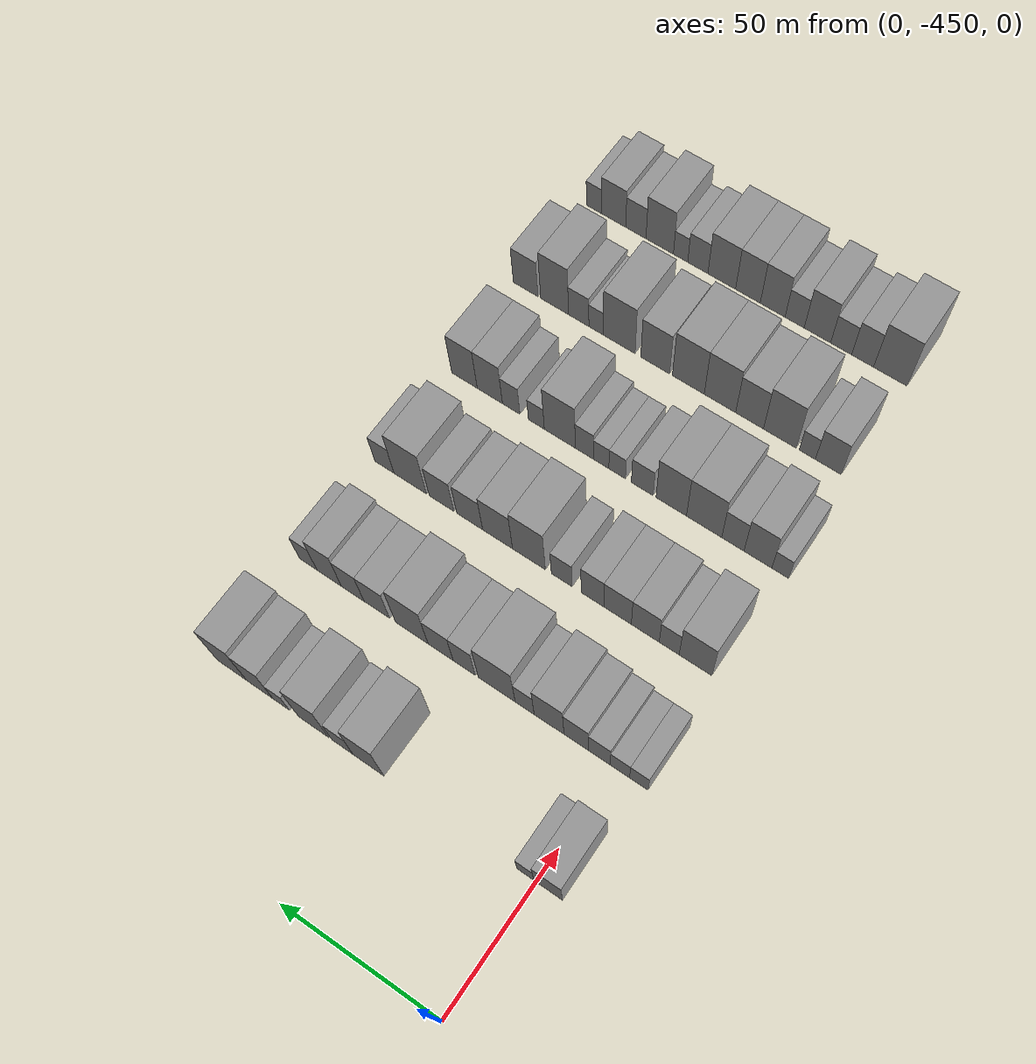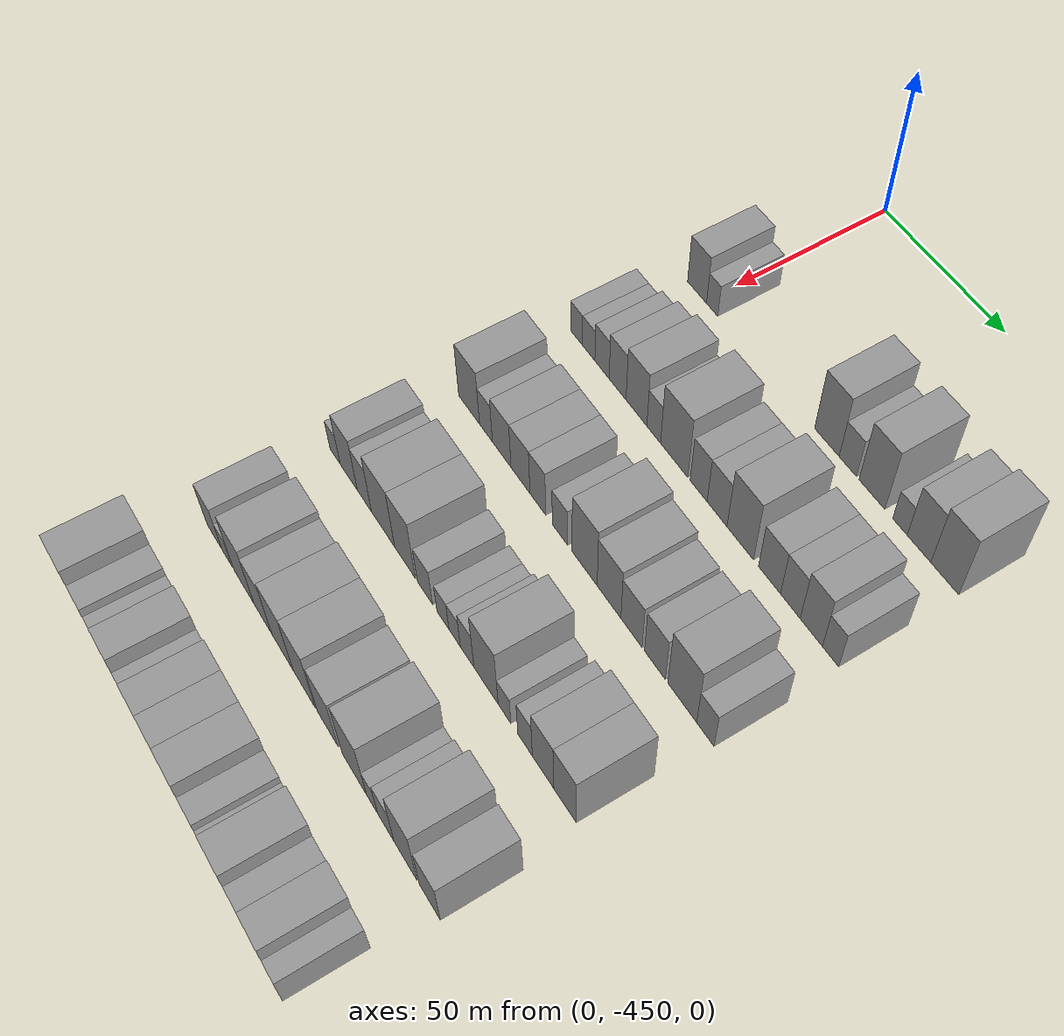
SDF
<sdf version="1.6">
 <world name="default">
  <model name="building_14">
   <static>1</static>
   <pose>50.0000 -453.6241 0 0.000000 0.000000 0.000000</pose>
   <link name="link">
    <pose>0 0 9.00 0 0 0</pose>
    <collision name="collision"><geometry><box><size>20.0000 8.7379 18.0000</size></box></geometry></collision>
    <visual name="visual">
     <cast_shadows>0</cast_shadows>
     <geometry><box><size>20.0000 8.7379 18.0000</size></box></geometry>
     <material>
      <script>
       <uri>model://grey_wall/materials/scripts</uri>
       <uri>model://grey_wall/materials/textures</uri>
       <name>vrc/grey_wall</name>
      </script>
     </material>
    </visual>
   </link>
  </model>
  <model name="building_15">
   <static>1</static>
   <pose>50.0000 -446.6677 0 0.000000 0.000000 0.000000</pose>
   <link name="link">
    <pose>0 0 6.00 0 0 0</pose>
    <collision name="collision"><geometry><box><size>20.0000 5.1750 12.0000</size></box></geometry></collision>
    <visual name="visual">
     <cast_shadows>0</cast_shadows>
     <geometry><box><size>20.0000 5.1750 12.0000</size></box></geometry>
     <material>
      <script>
       <uri>model://grey_wall/materials/scripts</uri>
       <uri>model://grey_wall/materials/textures</uri>
       <name>vrc/grey_wall</name>
      </script>
     </material>
    </visual>
   </link>
  </model>
  <model name="building_16">
   <static>1</static>
   <pose>50.0000 -397.0760 0 0.000000 0.000000 0.000000</pose>
   <link name="link">
    <pose>0 0 12.00 0 0 0</pose>
    <collision name="collision"><geometry><box><size>20.0000 10.0028 24.0000</size></box></geometry></collision>
    <visual name="visual">
     <cast_shadows>0</cast_shadows>
     <geometry><box><size>20.0000 10.0028 24.0000</size></box></geometry>
     <material>
      <script>
       <uri>model://grey_wall/materials/scripts</uri>
       <uri>model://grey_wall/materials/textures</uri>
       <name>vrc/grey_wall</name>
      </script>
     </material>
    </visual>
   </link>
  </model>
  <model name="building_17">
   <static>1</static>
   <pose>50.0000 -388.5987 0 0.000000 0.000000 0.000000</pose>
   <link name="link">
    <pose>0 0 7.50 0 0 0</pose>
    <collision name="collision"><geometry><box><size>20.0000 6.9518 15.0000</size></box></geometry></collision>
    <visual name="visual">
     <cast_shadows>0</cast_shadows>
     <geometry><box><size>20.0000 6.9518 15.0000</size></box></geometry>
     <material>
      <script>
       <uri>model://grey_wall/materials/scripts</uri>
       <uri>model://grey_wall/materials/textures</uri>
       <name>vrc/grey_wall</name>
      </script>
     </material>
    </visual>
   </link>
  </model>
  <model name="building_18">
   <static>1</static>
   <pose>50.0000 -379.0550 0 0.000000 0.000000 0.000000</pose>
   <link name="link">
    <pose>0 0 12.00 0 0 0</pose>
    <collision name="collision"><geometry><box><size>20.0000 10.1357 24.0000</size></box></geometry></collision>
    <visual name="visual">
     <cast_shadows>0</cast_shadows>
     <geometry><box><size>20.0000 10.1357 24.0000</size></box></geometry>
     <material>
      <script>
       <uri>model://grey_wall/materials/scripts</uri>
       <uri>model://grey_wall/materials/textures</uri>
       <name>vrc/grey_wall</name>
      </script>
     </material>
    </visual>
   </link>
  </model>
  <model name="building_19">
   <static>1</static>
   <pose>50.0000 -368.2282 0 0.000000 0.000000 0.000000</pose>
   <link name="link">
    <pose>0 0 6.00 0 0 0</pose>
    <collision name="collision"><geometry><box><size>20.0000 5.5179 12.0000</size></box></geometry></collision>
    <visual name="visual">
     <cast_shadows>0</cast_shadows>
     <geometry><box><size>20.0000 5.5179 12.0000</size></box></geometry>
     <material>
      <script>
       <uri>model://grey_wall/materials/scripts</uri>
       <uri>model://grey_wall/materials/textures</uri>
       <name>vrc/grey_wall</name>
      </script>
     </material>
    </visual>
   </link>
  </model>
  <model name="building_20">
   <static>1</static>
   <pose>50.0000 -361.0315 0 0.000000 0.000000 0.000000</pose>
   <link name="link">
    <pose>0 0 10.50 0 0 0</pose>
    <collision name="collision"><geometry><box><size>20.0000 8.8755 21.0000</size></box></geometry></collision>
    <visual name="visual">
     <cast_shadows>0</cast_shadows>
     <geometry><box><size>20.0000 8.8755 21.0000</size></box></geometry>
     <material>
      <script>
       <uri>model://grey_wall/materials/scripts</uri>
       <uri>model://grey_wall/materials/textures</uri>
       <name>vrc/grey_wall</name>
      </script>
     </material>
    </visual>
   </link>
  </model>
  <model name="building_21">
   <static>1</static>
   <pose>50.0000 -351.4811 0 0.000000 0.000000 0.000000</pose>
   <link name="link">
    <pose>0 0 12.00 0 0 0</pose>
    <collision name="collision"><geometry><box><size>20.0000 10.2253 24.0000</size></box></geometry></collision>
    <visual name="visual">
     <cast_shadows>0</cast_shadows>
     <geometry><box><size>20.0000 10.2253 24.0000</size></box></geometry>
     <material>
      <script>
       <uri>model://grey_wall/materials/scripts</uri>
       <uri>model://grey_wall/materials/textures</uri>
       <name>vrc/grey_wall</name>
      </script>
     </material>
    </visual>
   </link>
  </model>
  <model name="building_130">
   <static>1</static>
   <pose>85.0000 -457.6998 0 0.000000 0.000000 0.000000</pose>
   <link name="link">
    <pose>0 0 6.00 0 0 0</pose>
    <collision name="collision"><geometry><box><size>20.0000 5.7066 12.0000</size></box></geometry></collision>
    <visual name="visual">
     <cast_shadows>0</cast_shadows>
     <geometry><box><size>20.0000 5.7066 12.0000</size></box></geometry>
     <material>
      <script>
       <uri>model://grey_wall/materials/scripts</uri>
       <uri>model://grey_wall/materials/textures</uri>
       <name>vrc/grey_wall</name>
      </script>
     </material>
    </visual>
   </link>
  </model>
  <model name="building_131">
   <static>1</static>
   <pose>85.0000 -451.8606 0 0.000000 0.000000 0.000000</pose>
   <link name="link">
    <pose>0 0 6.00 0 0 0</pose>
    <collision name="collision"><geometry><box><size>20.0000 5.9718 12.0000</size></box></geometry></collision>
    <visual name="visual">
     <cast_shadows>0</cast_shadows>
     <geometry><box><size>20.0000 5.9718 12.0000</size></box></geometry>
     <material>
      <script>
       <uri>model://grey_wall/materials/scripts</uri>
       <uri>model://grey_wall/materials/textures</uri>
       <name>vrc/grey_wall</name>
      </script>
     </material>
    </visual>
   </link>
  </model>
  <model name="building_132">
   <static>1</static>
   <pose>85.0000 -445.5082 0 0.000000 0.000000 0.000000</pose>
   <link name="link">
    <pose>0 0 7.50 0 0 0</pose>
    <collision name="collision"><geometry><box><size>20.0000 6.7330 15.0000</size></box></geometry></collision>
    <visual name="visual">
     <cast_shadows>0</cast_shadows>
     <geometry><box><size>20.0000 6.7330 15.0000</size></box></geometry>
     <material>
      <script>
       <uri>model://grey_wall/materials/scripts</uri>
       <uri>model://grey_wall/materials/textures</uri>
       <name>vrc/grey_wall</name>
      </script>
     </material>
    </visual>
   </link>
  </model>
  <model name="building_133">
   <static>1</static>
   <pose>85.0000 -438.2456 0 0.000000 0.000000 0.000000</pose>
   <link name="link">
    <pose>0 0 9.00 0 0 0</pose>
    <collision name="collision"><geometry><box><size>20.0000 7.7922 18.0000</size></box></geometry></collision>
    <visual name="visual">
     <cast_shadows>0</cast_shadows>
     <geometry><box><size>20.0000 7.7922 18.0000</size></box></geometry>
     <material>
      <script>
       <uri>model://grey_wall/materials/scripts</uri>
       <uri>model://grey_wall/materials/textures</uri>
       <name>vrc/grey_wall</name>
      </script>
     </material>
    </visual>
   </link>
  </model>
  <model name="building_134">
   <static>1</static>
   <pose>85.0000 -429.6137 0 0.000000 0.000000 0.000000</pose>
   <link name="link">
    <pose>0 0 10.50 0 0 0</pose>
    <collision name="collision"><geometry><box><size>20.0000 9.4715 21.0000</size></box></geometry></collision>
    <visual name="visual">
     <cast_shadows>0</cast_shadows>
     <geometry><box><size>20.0000 9.4715 21.0000</size></box></geometry>
     <material>
      <script>
       <uri>model://grey_wall/materials/scripts</uri>
       <uri>model://grey_wall/materials/textures</uri>
       <name>vrc/grey_wall</name>
      </script>
     </material>
    </visual>
   </link>
  </model>
  <model name="building_135">
   <static>1</static>
   <pose>85.0000 -421.8166 0 0.000000 0.000000 0.000000</pose>
   <link name="link">
    <pose>0 0 7.50 0 0 0</pose>
    <collision name="collision"><geometry><box><size>20.0000 6.1227 15.0000</size></box></geometry></collision>
    <visual name="visual">
     <cast_shadows>0</cast_shadows>
     <geometry><box><size>20.0000 6.1227 15.0000</size></box></geometry>
     <material>
      <script>
       <uri>model://grey_wall/materials/scripts</uri>
       <uri>model://grey_wall/materials/textures</uri>
       <name>vrc/grey_wall</name>
      </script>
     </material>
    </visual>
   </link>
  </model>
  <model name="building_136">
   <static>1</static>
   <pose>85.0000 -412.7860 0 0.000000 0.000000 0.000000</pose>
   <link name="link">
    <pose>0 0 12.00 0 0 0</pose>
    <collision name="collision"><geometry><box><size>20.0000 11.9385 24.0000</size></box></geometry></collision>
    <visual name="visual">
     <cast_shadows>0</cast_shadows>
     <geometry><box><size>20.0000 11.9385 24.0000</size></box></geometry>
     <material>
      <script>
       <uri>model://grey_wall/materials/scripts</uri>
       <uri>model://grey_wall/materials/textures</uri>
       <name>vrc/grey_wall</name>
      </script>
     </material>
    </visual>
   </link>
  </model>
  <model name="building_137">
   <static>1</static>
   <pose>85.0000 -402.1989 0 0.000000 0.000000 0.000000</pose>
   <link name="link">
    <pose>0 0 9.00 0 0 0</pose>
    <collision name="collision"><geometry><box><size>20.0000 7.2358 18.0000</size></box></geometry></collision>
    <visual name="visual">
     <cast_shadows>0</cast_shadows>
     <geometry><box><size>20.0000 7.2358 18.0000</size></box></geometry>
     <material>
      <script>
       <uri>model://grey_wall/materials/scripts</uri>
       <uri>model://grey_wall/materials/textures</uri>
       <name>vrc/grey_wall</name>
      </script>
     </material>
    </visual>
   </link>
  </model>
  <model name="building_138">
   <static>1</static>
   <pose>85.0000 -394.4240 0 0.000000 0.000000 0.000000</pose>
   <link name="link">
    <pose>0 0 9.00 0 0 0</pose>
    <collision name="collision"><geometry><box><size>20.0000 8.3141 18.0000</size></box></geometry></collision>
    <visual name="visual">
     <cast_shadows>0</cast_shadows>
     <geometry><box><size>20.0000 8.3141 18.0000</size></box></geometry>
     <material>
      <script>
       <uri>model://grey_wall/materials/scripts</uri>
       <uri>model://grey_wall/materials/textures</uri>
       <name>vrc/grey_wall</name>
      </script>
     </material>
    </visual>
   </link>
  </model>
  <model name="building_139">
   <static>1</static>
   <pose>85.0000 -384.8266 0 0.000000 0.000000 0.000000</pose>
   <link name="link">
    <pose>0 0 12.00 0 0 0</pose>
    <collision name="collision"><geometry><box><size>20.0000 10.8806 24.0000</size></box></geometry></collision>
    <visual name="visual">
     <cast_shadows>0</cast_shadows>
     <geometry><box><size>20.0000 10.8806 24.0000</size></box></geometry>
     <material>
      <script>
       <uri>model://grey_wall/materials/scripts</uri>
       <uri>model://grey_wall/materials/textures</uri>
       <name>vrc/grey_wall</name>
      </script>
     </material>
    </visual>
   </link>
  </model>
  <model name="building_140">
   <static>1</static>
   <pose>85.0000 -373.0223 0 0.000000 0.000000 0.000000</pose>
   <link name="link">
    <pose>0 0 9.00 0 0 0</pose>
    <collision name="collision"><geometry><box><size>20.0000 8.7279 18.0000</size></box></geometry></collision>
    <visual name="visual">
     <cast_shadows>0</cast_shadows>
     <geometry><box><size>20.0000 8.7279 18.0000</size></box></geometry>
     <material>
      <script>
       <uri>model://grey_wall/materials/scripts</uri>
       <uri>model://grey_wall/materials/textures</uri>
       <name>vrc/grey_wall</name>
      </script>
     </material>
    </visual>
   </link>
  </model>
  <model name="building_141">
   <static>1</static>
   <pose>85.0000 -364.7977 0 0.000000 0.000000 0.000000</pose>
   <link name="link">
    <pose>0 0 9.00 0 0 0</pose>
    <collision name="collision"><geometry><box><size>20.0000 7.7214 18.0000</size></box></geometry></collision>
    <visual name="visual">
     <cast_shadows>0</cast_shadows>
     <geometry><box><size>20.0000 7.7214 18.0000</size></box></geometry>
     <material>
      <script>
       <uri>model://grey_wall/materials/scripts</uri>
       <uri>model://grey_wall/materials/textures</uri>
       <name>vrc/grey_wall</name>
      </script>
     </material>
    </visual>
   </link>
  </model>
  <model name="building_142">
   <static>1</static>
   <pose>85.0000 -356.7018 0 0.000000 0.000000 0.000000</pose>
   <link name="link">
    <pose>0 0 10.50 0 0 0</pose>
    <collision name="collision"><geometry><box><size>20.0000 8.4702 21.0000</size></box></geometry></collision>
    <visual name="visual">
     <cast_shadows>0</cast_shadows>
     <geometry><box><size>20.0000 8.4702 21.0000</size></box></geometry>
     <material>
      <script>
       <uri>model://grey_wall/materials/scripts</uri>
       <uri>model://grey_wall/materials/textures</uri>
       <name>vrc/grey_wall</name>
      </script>
     </material>
    </visual>
   </link>
  </model>
  <model name="building_143">
   <static>1</static>
   <pose>85.0000 -349.4256 0 0.000000 0.000000 0.000000</pose>
   <link name="link">
    <pose>0 0 7.50 0 0 0</pose>
    <collision name="collision"><geometry><box><size>20.0000 6.0821 15.0000</size></box></geometry></collision>
    <visual name="visual">
     <cast_shadows>0</cast_shadows>
     <geometry><box><size>20.0000 6.0821 15.0000</size></box></geometry>
     <material>
      <script>
       <uri>model://grey_wall/materials/scripts</uri>
       <uri>model://grey_wall/materials/textures</uri>
       <name>vrc/grey_wall</name>
      </script>
     </material>
    </visual>
   </link>
  </model>
  <model name="building_257">
   <static>1</static>
   <pose>120.0000 -452.7045 0 0.000000 0.000000 0.000000</pose>
   <link name="link">
    <pose>0 0 10.50 0 0 0</pose>
    <collision name="collision"><geometry><box><size>20.0000 10.3435 21.0000</size></box></geometry></collision>
    <visual name="visual">
     <cast_shadows>0</cast_shadows>
     <geometry><box><size>20.0000 10.3435 21.0000</size></box></geometry>
     <material>
      <script>
       <uri>model://grey_wall/materials/scripts</uri>
       <uri>model://grey_wall/materials/textures</uri>
       <name>vrc/grey_wall</name>
      </script>
     </material>
    </visual>
   </link>
  </model>
  <model name="building_258">
   <static>1</static>
   <pose>120.0000 -444.3731 0 0.000000 0.000000 0.000000</pose>
   <link name="link">
    <pose>0 0 7.50 0 0 0</pose>
    <collision name="collision"><geometry><box><size>20.0000 6.3193 15.0000</size></box></geometry></collision>
    <visual name="visual">
     <cast_shadows>0</cast_shadows>
     <geometry><box><size>20.0000 6.3193 15.0000</size></box></geometry>
     <material>
      <script>
       <uri>model://grey_wall/materials/scripts</uri>
       <uri>model://grey_wall/materials/textures</uri>
       <name>vrc/grey_wall</name>
      </script>
     </material>
    </visual>
   </link>
  </model>
  <model name="building_259">
   <static>1</static>
   <pose>120.0000 -436.7441 0 0.000000 0.000000 0.000000</pose>
   <link name="link">
    <pose>0 0 9.00 0 0 0</pose>
    <collision name="collision"><geometry><box><size>20.0000 8.9385 18.0000</size></box></geometry></collision>
    <visual name="visual">
     <cast_shadows>0</cast_shadows>
     <geometry><box><size>20.0000 8.9385 18.0000</size></box></geometry>
     <material>
      <script>
       <uri>model://grey_wall/materials/scripts</uri>
       <uri>model://grey_wall/materials/textures</uri>
       <name>vrc/grey_wall</name>
      </script>
     </material>
    </visual>
   </link>
  </model>
  <model name="building_260">
   <static>1</static>
   <pose>120.0000 -427.7985 0 0.000000 0.000000 0.000000</pose>
   <link name="link">
    <pose>0 0 9.00 0 0 0</pose>
    <collision name="collision"><geometry><box><size>20.0000 8.9528 18.0000</size></box></geometry></collision>
    <visual name="visual">
     <cast_shadows>0</cast_shadows>
     <geometry><box><size>20.0000 8.9528 18.0000</size></box></geometry>
     <material>
      <script>
       <uri>model://grey_wall/materials/scripts</uri>
       <uri>model://grey_wall/materials/textures</uri>
       <name>vrc/grey_wall</name>
      </script>
     </material>
    </visual>
   </link>
  </model>
  <model name="building_261">
   <static>1</static>
   <pose>120.0000 -419.6604 0 0.000000 0.000000 0.000000</pose>
   <link name="link">
    <pose>0 0 9.00 0 0 0</pose>
    <collision name="collision"><geometry><box><size>20.0000 7.3235 18.0000</size></box></geometry></collision>
    <visual name="visual">
     <cast_shadows>0</cast_shadows>
     <geometry><box><size>20.0000 7.3235 18.0000</size></box></geometry>
     <material>
      <script>
       <uri>model://grey_wall/materials/scripts</uri>
       <uri>model://grey_wall/materials/textures</uri>
       <name>vrc/grey_wall</name>
      </script>
     </material>
    </visual>
   </link>
  </model>
  <model name="building_262">
   <static>1</static>
   <pose>120.0000 -409.5541 0 0.000000 0.000000 0.000000</pose>
   <link name="link">
    <pose>0 0 7.50 0 0 0</pose>
    <collision name="collision"><geometry><box><size>20.0000 6.8890 15.0000</size></box></geometry></collision>
    <visual name="visual">
     <cast_shadows>0</cast_shadows>
     <geometry><box><size>20.0000 6.8890 15.0000</size></box></geometry>
     <material>
      <script>
       <uri>model://grey_wall/materials/scripts</uri>
       <uri>model://grey_wall/materials/textures</uri>
       <name>vrc/grey_wall</name>
      </script>
     </material>
    </visual>
   </link>
  </model>
  <model name="building_263">
   <static>1</static>
   <pose>120.0000 -398.6266 0 0.000000 0.000000 0.000000</pose>
   <link name="link">
    <pose>0 0 12.00 0 0 0</pose>
    <collision name="collision"><geometry><box><size>20.0000 10.9659 24.0000</size></box></geometry></collision>
    <visual name="visual">
     <cast_shadows>0</cast_shadows>
     <geometry><box><size>20.0000 10.9659 24.0000</size></box></geometry>
     <material>
      <script>
       <uri>model://grey_wall/materials/scripts</uri>
       <uri>model://grey_wall/materials/textures</uri>
       <name>vrc/grey_wall</name>
      </script>
     </material>
    </visual>
   </link>
  </model>
  <model name="building_264">
   <static>1</static>
   <pose>120.0000 -388.0720 0 0.000000 0.000000 0.000000</pose>
   <link name="link">
    <pose>0 0 10.50 0 0 0</pose>
    <collision name="collision"><geometry><box><size>20.0000 10.1434 21.0000</size></box></geometry></collision>
    <visual name="visual">
     <cast_shadows>0</cast_shadows>
     <geometry><box><size>20.0000 10.1434 21.0000</size></box></geometry>
     <material>
      <script>
       <uri>model://grey_wall/materials/scripts</uri>
       <uri>model://grey_wall/materials/textures</uri>
       <name>vrc/grey_wall</name>
      </script>
     </material>
    </visual>
   </link>
  </model>
  <model name="building_265">
   <static>1</static>
   <pose>120.0000 -378.5738 0 0.000000 0.000000 0.000000</pose>
   <link name="link">
    <pose>0 0 9.00 0 0 0</pose>
    <collision name="collision"><geometry><box><size>20.0000 8.8529 18.0000</size></box></geometry></collision>
    <visual name="visual">
     <cast_shadows>0</cast_shadows>
     <geometry><box><size>20.0000 8.8529 18.0000</size></box></geometry>
     <material>
      <script>
       <uri>model://grey_wall/materials/scripts</uri>
       <uri>model://grey_wall/materials/textures</uri>
       <name>vrc/grey_wall</name>
      </script>
     </material>
    </visual>
   </link>
  </model>
  <model name="building_266">
   <static>1</static>
   <pose>120.0000 -368.8985 0 0.000000 0.000000 0.000000</pose>
   <link name="link">
    <pose>0 0 9.00 0 0 0</pose>
    <collision name="collision"><geometry><box><size>20.0000 8.4978 18.0000</size></box></geometry></collision>
    <visual name="visual">
     <cast_shadows>0</cast_shadows>
     <geometry><box><size>20.0000 8.4978 18.0000</size></box></geometry>
     <material>
      <script>
       <uri>model://grey_wall/materials/scripts</uri>
       <uri>model://grey_wall/materials/textures</uri>
       <name>vrc/grey_wall</name>
      </script>
     </material>
    </visual>
   </link>
  </model>
  <model name="building_267">
   <static>1</static>
   <pose>120.0000 -357.9546 0 0.000000 0.000000 0.000000</pose>
   <link name="link">
    <pose>0 0 12.00 0 0 0</pose>
    <collision name="collision"><geometry><box><size>20.0000 11.3901 24.0000</size></box></geometry></collision>
    <visual name="visual">
     <cast_shadows>0</cast_shadows>
     <geometry><box><size>20.0000 11.3901 24.0000</size></box></geometry>
     <material>
      <script>
       <uri>model://grey_wall/materials/scripts</uri>
       <uri>model://grey_wall/materials/textures</uri>
       <name>vrc/grey_wall</name>
      </script>
     </material>
    </visual>
   </link>
  </model>
  <model name="building_268">
   <static>1</static>
   <pose>120.0000 -348.8794 0 0.000000 0.000000 0.000000</pose>
   <link name="link">
    <pose>0 0 7.50 0 0 0</pose>
    <collision name="collision"><geometry><box><size>20.0000 6.7604 15.0000</size></box></geometry></collision>
    <visual name="visual">
     <cast_shadows>0</cast_shadows>
     <geometry><box><size>20.0000 6.7604 15.0000</size></box></geometry>
     <material>
      <script>
       <uri>model://grey_wall/materials/scripts</uri>
       <uri>model://grey_wall/materials/textures</uri>
       <name>vrc/grey_wall</name>
      </script>
     </material>
    </visual>
   </link>
  </model>
  <model name="building_375">
   <static>1</static>
   <pose>155.0000 -457.9069 0 0.000000 0.000000 0.000000</pose>
   <link name="link">
    <pose>0 0 6.00 0 0 0</pose>
    <collision name="collision"><geometry><box><size>20.0000 5.3561 12.0000</size></box></geometry></collision>
    <visual name="visual">
     <cast_shadows>0</cast_shadows>
     <geometry><box><size>20.0000 5.3561 12.0000</size></box></geometry>
     <material>
      <script>
       <uri>model://grey_wall/materials/scripts</uri>
       <uri>model://grey_wall/materials/textures</uri>
       <name>vrc/grey_wall</name>
      </script>
     </material>
    </visual>
   </link>
  </model>
  <model name="building_376">
   <static>1</static>
   <pose>155.0000 -450.7544 0 0.000000 0.000000 0.000000</pose>
   <link name="link">
    <pose>0 0 10.50 0 0 0</pose>
    <collision name="collision"><geometry><box><size>20.0000 8.9489 21.0000</size></box></geometry></collision>
    <visual name="visual">
     <cast_shadows>0</cast_shadows>
     <geometry><box><size>20.0000 8.9489 21.0000</size></box></geometry>
     <material>
      <script>
       <uri>model://grey_wall/materials/scripts</uri>
       <uri>model://grey_wall/materials/textures</uri>
       <name>vrc/grey_wall</name>
      </script>
     </material>
    </visual>
   </link>
  </model>
  <model name="building_377">
   <static>1</static>
   <pose>155.0000 -442.6670 0 0.000000 0.000000 0.000000</pose>
   <link name="link">
    <pose>0 0 9.00 0 0 0</pose>
    <collision name="collision"><geometry><box><size>20.0000 7.2259 18.0000</size></box></geometry></collision>
    <visual name="visual">
     <cast_shadows>0</cast_shadows>
     <geometry><box><size>20.0000 7.2259 18.0000</size></box></geometry>
     <material>
      <script>
       <uri>model://grey_wall/materials/scripts</uri>
       <uri>model://grey_wall/materials/textures</uri>
       <name>vrc/grey_wall</name>
      </script>
     </material>
    </visual>
   </link>
  </model>
  <model name="building_378">
   <static>1</static>
   <pose>155.0000 -433.2791 0 0.000000 0.000000 0.000000</pose>
   <link name="link">
    <pose>0 0 12.00 0 0 0</pose>
    <collision name="collision"><geometry><box><size>20.0000 11.5499 24.0000</size></box></geometry></collision>
    <visual name="visual">
     <cast_shadows>0</cast_shadows>
     <geometry><box><size>20.0000 11.5499 24.0000</size></box></geometry>
     <material>
      <script>
       <uri>model://grey_wall/materials/scripts</uri>
       <uri>model://grey_wall/materials/textures</uri>
       <name>vrc/grey_wall</name>
      </script>
     </material>
    </visual>
   </link>
  </model>
  <model name="building_379">
   <static>1</static>
   <pose>155.0000 -422.4708 0 0.000000 0.000000 0.000000</pose>
   <link name="link">
    <pose>0 0 12.00 0 0 0</pose>
    <collision name="collision"><geometry><box><size>20.0000 10.0667 24.0000</size></box></geometry></collision>
    <visual name="visual">
     <cast_shadows>0</cast_shadows>
     <geometry><box><size>20.0000 10.0667 24.0000</size></box></geometry>
     <material>
      <script>
       <uri>model://grey_wall/materials/scripts</uri>
       <uri>model://grey_wall/materials/textures</uri>
       <name>vrc/grey_wall</name>
      </script>
     </material>
    </visual>
   </link>
  </model>
  <model name="building_380">
   <static>1</static>
   <pose>155.0000 -412.8053 0 0.000000 0.000000 0.000000</pose>
   <link name="link">
    <pose>0 0 7.50 0 0 0</pose>
    <collision name="collision"><geometry><box><size>20.0000 7.2642 15.0000</size></box></geometry></collision>
    <visual name="visual">
     <cast_shadows>0</cast_shadows>
     <geometry><box><size>20.0000 7.2642 15.0000</size></box></geometry>
     <material>
      <script>
       <uri>model://grey_wall/materials/scripts</uri>
       <uri>model://grey_wall/materials/textures</uri>
       <name>vrc/grey_wall</name>
      </script>
     </material>
    </visual>
   </link>
  </model>
  <model name="building_381">
   <static>1</static>
   <pose>155.0000 -404.3689 0 0.000000 0.000000 0.000000</pose>
   <link name="link">
    <pose>0 0 6.00 0 0 0</pose>
    <collision name="collision"><geometry><box><size>20.0000 5.6086 12.0000</size></box></geometry></collision>
    <visual name="visual">
     <cast_shadows>0</cast_shadows>
     <geometry><box><size>20.0000 5.6086 12.0000</size></box></geometry>
     <material>
      <script>
       <uri>model://grey_wall/materials/scripts</uri>
       <uri>model://grey_wall/materials/textures</uri>
       <name>vrc/grey_wall</name>
      </script>
     </material>
    </visual>
   </link>
  </model>
  <model name="building_382">
   <static>1</static>
   <pose>155.0000 -398.9492 0 0.000000 0.000000 0.000000</pose>
   <link name="link">
    <pose>0 0 6.00 0 0 0</pose>
    <collision name="collision"><geometry><box><size>20.0000 5.2308 12.0000</size></box></geometry></collision>
    <visual name="visual">
     <cast_shadows>0</cast_shadows>
     <geometry><box><size>20.0000 5.2308 12.0000</size></box></geometry>
     <material>
      <script>
       <uri>model://grey_wall/materials/scripts</uri>
       <uri>model://grey_wall/materials/textures</uri>
       <name>vrc/grey_wall</name>
      </script>
     </material>
    </visual>
   </link>
  </model>
  <model name="building_383">
   <static>1</static>
   <pose>155.0000 -393.2549 0 0.000000 0.000000 0.000000</pose>
   <link name="link">
    <pose>0 0 7.50 0 0 0</pose>
    <collision name="collision"><geometry><box><size>20.0000 6.1578 15.0000</size></box></geometry></collision>
    <visual name="visual">
     <cast_shadows>0</cast_shadows>
     <geometry><box><size>20.0000 6.1578 15.0000</size></box></geometry>
     <material>
      <script>
       <uri>model://grey_wall/materials/scripts</uri>
       <uri>model://grey_wall/materials/textures</uri>
       <name>vrc/grey_wall</name>
      </script>
     </material>
    </visual>
   </link>
  </model>
  <model name="building_384">
   <static>1</static>
   <pose>155.0000 -384.8021 0 0.000000 0.000000 0.000000</pose>
   <link name="link">
    <pose>0 0 12.00 0 0 0</pose>
    <collision name="collision"><geometry><box><size>20.0000 10.7479 24.0000</size></box></geometry></collision>
    <visual name="visual">
     <cast_shadows>0</cast_shadows>
     <geometry><box><size>20.0000 10.7479 24.0000</size></box></geometry>
     <material>
      <script>
       <uri>model://grey_wall/materials/scripts</uri>
       <uri>model://grey_wall/materials/textures</uri>
       <name>vrc/grey_wall</name>
      </script>
     </material>
    </visual>
   </link>
  </model>
  <model name="building_385">
   <static>1</static>
   <pose>155.0000 -376.6828 0 0.000000 0.000000 0.000000</pose>
   <link name="link">
    <pose>0 0 6.00 0 0 0</pose>
    <collision name="collision"><geometry><box><size>20.0000 5.4907 12.0000</size></box></geometry></collision>
    <visual name="visual">
     <cast_shadows>0</cast_shadows>
     <geometry><box><size>20.0000 5.4907 12.0000</size></box></geometry>
     <material>
      <script>
       <uri>model://grey_wall/materials/scripts</uri>
       <uri>model://grey_wall/materials/textures</uri>
       <name>vrc/grey_wall</name>
      </script>
     </material>
    </visual>
   </link>
  </model>
  <model name="building_386">
   <static>1</static>
   <pose>155.0000 -367.8642 0 0.000000 0.000000 0.000000</pose>
   <link name="link">
    <pose>0 0 7.50 0 0 0</pose>
    <collision name="collision"><geometry><box><size>20.0000 6.1466 15.0000</size></box></geometry></collision>
    <visual name="visual">
     <cast_shadows>0</cast_shadows>
     <geometry><box><size>20.0000 6.1466 15.0000</size></box></geometry>
     <material>
      <script>
       <uri>model://grey_wall/materials/scripts</uri>
       <uri>model://grey_wall/materials/textures</uri>
       <name>vrc/grey_wall</name>
      </script>
     </material>
    </visual>
   </link>
  </model>
  <model name="building_387">
   <static>1</static>
   <pose>155.0000 -360.3301 0 0.000000 0.000000 0.000000</pose>
   <link name="link">
    <pose>0 0 10.50 0 0 0</pose>
    <collision name="collision"><geometry><box><size>20.0000 8.9215 21.0000</size></box></geometry></collision>
    <visual name="visual">
     <cast_shadows>0</cast_shadows>
     <geometry><box><size>20.0000 8.9215 21.0000</size></box></geometry>
     <material>
      <script>
       <uri>model://grey_wall/materials/scripts</uri>
       <uri>model://grey_wall/materials/textures</uri>
       <name>vrc/grey_wall</name>
      </script>
     </material>
    </visual>
   </link>
  </model>
  <model name="building_388">
   <static>1</static>
   <pose>155.0000 -351.3182 0 0.000000 0.000000 0.000000</pose>
   <link name="link">
    <pose>0 0 10.50 0 0 0</pose>
    <collision name="collision"><geometry><box><size>20.0000 9.1024 21.0000</size></box></geometry></collision>
    <visual name="visual">
     <cast_shadows>0</cast_shadows>
     <geometry><box><size>20.0000 9.1024 21.0000</size></box></geometry>
     <material>
      <script>
       <uri>model://grey_wall/materials/scripts</uri>
       <uri>model://grey_wall/materials/textures</uri>
       <name>vrc/grey_wall</name>
      </script>
     </material>
    </visual>
   </link>
  </model>
  <model name="building_501">
   <static>1</static>
   <pose>190.0000 -452.5673 0 0.000000 0.000000 0.000000</pose>
   <link name="link">
    <pose>0 0 9.00 0 0 0</pose>
    <collision name="collision"><geometry><box><size>20.0000 8.4271 18.0000</size></box></geometry></collision>
    <visual name="visual">
     <cast_shadows>0</cast_shadows>
     <geometry><box><size>20.0000 8.4271 18.0000</size></box></geometry>
     <material>
      <script>
       <uri>model://grey_wall/materials/scripts</uri>
       <uri>model://grey_wall/materials/textures</uri>
       <name>vrc/grey_wall</name>
      </script>
     </material>
    </visual>
   </link>
  </model>
  <model name="building_502">
   <static>1</static>
   <pose>190.0000 -445.6973 0 0.000000 0.000000 0.000000</pose>
   <link name="link">
    <pose>0 0 6.00 0 0 0</pose>
    <collision name="collision"><geometry><box><size>20.0000 5.3130 12.0000</size></box></geometry></collision>
    <visual name="visual">
     <cast_shadows>0</cast_shadows>
     <geometry><box><size>20.0000 5.3130 12.0000</size></box></geometry>
     <material>
      <script>
       <uri>model://grey_wall/materials/scripts</uri>
       <uri>model://grey_wall/materials/textures</uri>
       <name>vrc/grey_wall</name>
      </script>
     </material>
    </visual>
   </link>
  </model>
  <model name="building_503">
   <static>1</static>
   <pose>190.0000 -436.6129 0 0.000000 0.000000 0.000000</pose>
   <link name="link">
    <pose>0 0 12.00 0 0 0</pose>
    <collision name="collision"><geometry><box><size>20.0000 10.8556 24.0000</size></box></geometry></collision>
    <visual name="visual">
     <cast_shadows>0</cast_shadows>
     <geometry><box><size>20.0000 10.8556 24.0000</size></box></geometry>
     <material>
      <script>
       <uri>model://grey_wall/materials/scripts</uri>
       <uri>model://grey_wall/materials/textures</uri>
       <name>vrc/grey_wall</name>
      </script>
     </material>
    </visual>
   </link>
  </model>
  <model name="building_504">
   <static>1</static>
   <pose>190.0000 -426.5342 0 0.000000 0.000000 0.000000</pose>
   <link name="link">
    <pose>0 0 10.50 0 0 0</pose>
    <collision name="collision"><geometry><box><size>20.0000 9.3019 21.0000</size></box></geometry></collision>
    <visual name="visual">
     <cast_shadows>0</cast_shadows>
     <geometry><box><size>20.0000 9.3019 21.0000</size></box></geometry>
     <material>
      <script>
       <uri>model://grey_wall/materials/scripts</uri>
       <uri>model://grey_wall/materials/textures</uri>
       <name>vrc/grey_wall</name>
      </script>
     </material>
    </visual>
   </link>
  </model>
  <model name="building_505">
   <static>1</static>
   <pose>190.0000 -416.5490 0 0.000000 0.000000 0.000000</pose>
   <link name="link">
    <pose>0 0 12.00 0 0 0</pose>
    <collision name="collision"><geometry><box><size>20.0000 10.6683 24.0000</size></box></geometry></collision>
    <visual name="visual">
     <cast_shadows>0</cast_shadows>
     <geometry><box><size>20.0000 10.6683 24.0000</size></box></geometry>
     <material>
      <script>
       <uri>model://grey_wall/materials/scripts</uri>
       <uri>model://grey_wall/materials/textures</uri>
       <name>vrc/grey_wall</name>
      </script>
     </material>
    </visual>
   </link>
  </model>
  <model name="building_506">
   <static>1</static>
   <pose>190.0000 -405.7596 0 0.000000 0.000000 0.000000</pose>
   <link name="link">
    <pose>0 0 12.00 0 0 0</pose>
    <collision name="collision"><geometry><box><size>20.0000 10.9107 24.0000</size></box></geometry></collision>
    <visual name="visual">
     <cast_shadows>0</cast_shadows>
     <geometry><box><size>20.0000 10.9107 24.0000</size></box></geometry>
     <material>
      <script>
       <uri>model://grey_wall/materials/scripts</uri>
       <uri>model://grey_wall/materials/textures</uri>
       <name>vrc/grey_wall</name>
      </script>
     </material>
    </visual>
   </link>
  </model>
  <model name="building_507">
   <static>1</static>
   <pose>190.0000 -394.3227 0 0.000000 0.000000 0.000000</pose>
   <link name="link">
    <pose>0 0 10.50 0 0 0</pose>
    <collision name="collision"><geometry><box><size>20.0000 9.9630 21.0000</size></box></geometry></collision>
    <visual name="visual">
     <cast_shadows>0</cast_shadows>
     <geometry><box><size>20.0000 9.9630 21.0000</size></box></geometry>
     <material>
      <script>
       <uri>model://grey_wall/materials/scripts</uri>
       <uri>model://grey_wall/materials/textures</uri>
       <name>vrc/grey_wall</name>
      </script>
     </material>
    </visual>
   </link>
  </model>
  <model name="building_508">
   <static>1</static>
   <pose>190.0000 -381.7640 0 0.000000 0.000000 0.000000</pose>
   <link name="link">
    <pose>0 0 12.00 0 0 0</pose>
    <collision name="collision"><geometry><box><size>20.0000 11.1545 24.0000</size></box></geometry></collision>
    <visual name="visual">
     <cast_shadows>0</cast_shadows>
     <geometry><box><size>20.0000 11.1545 24.0000</size></box></geometry>
     <material>
      <script>
       <uri>model://grey_wall/materials/scripts</uri>
       <uri>model://grey_wall/materials/textures</uri>
       <name>vrc/grey_wall</name>
      </script>
     </material>
    </visual>
   </link>
  </model>
  <model name="building_509">
   <static>1</static>
   <pose>190.0000 -373.6286 0 0.000000 0.000000 0.000000</pose>
   <link name="link">
    <pose>0 0 6.00 0 0 0</pose>
    <collision name="collision"><geometry><box><size>20.0000 5.1164 12.0000</size></box></geometry></collision>
    <visual name="visual">
     <cast_shadows>0</cast_shadows>
     <geometry><box><size>20.0000 5.1164 12.0000</size></box></geometry>
     <material>
      <script>
       <uri>model://grey_wall/materials/scripts</uri>
       <uri>model://grey_wall/materials/textures</uri>
       <name>vrc/grey_wall</name>
      </script>
     </material>
    </visual>
   </link>
  </model>
  <model name="building_510">
   <static>1</static>
   <pose>190.0000 -367.4562 0 0.000000 0.000000 0.000000</pose>
   <link name="link">
    <pose>0 0 7.50 0 0 0</pose>
    <collision name="collision"><geometry><box><size>20.0000 7.2284 15.0000</size></box></geometry></collision>
    <visual name="visual">
     <cast_shadows>0</cast_shadows>
     <geometry><box><size>20.0000 7.2284 15.0000</size></box></geometry>
     <material>
      <script>
       <uri>model://grey_wall/materials/scripts</uri>
       <uri>model://grey_wall/materials/textures</uri>
       <name>vrc/grey_wall</name>
      </script>
     </material>
    </visual>
   </link>
  </model>
  <model name="building_511">
   <static>1</static>
   <pose>190.0000 -358.8187 0 0.000000 0.000000 0.000000</pose>
   <link name="link">
    <pose>0 0 12.00 0 0 0</pose>
    <collision name="collision"><geometry><box><size>20.0000 10.0465 24.0000</size></box></geometry></collision>
    <visual name="visual">
     <cast_shadows>0</cast_shadows>
     <geometry><box><size>20.0000 10.0465 24.0000</size></box></geometry>
     <material>
      <script>
       <uri>model://grey_wall/materials/scripts</uri>
       <uri>model://grey_wall/materials/textures</uri>
       <name>vrc/grey_wall</name>
      </script>
     </material>
    </visual>
   </link>
  </model>
  <model name="building_512">
   <static>1</static>
   <pose>190.0000 -348.3422 0 0.000000 0.000000 0.000000</pose>
   <link name="link">
    <pose>0 0 9.00 0 0 0</pose>
    <collision name="collision"><geometry><box><size>20.0000 8.9065 18.0000</size></box></geometry></collision>
    <visual name="visual">
     <cast_shadows>0</cast_shadows>
     <geometry><box><size>20.0000 8.9065 18.0000</size></box></geometry>
     <material>
      <script>
       <uri>model://grey_wall/materials/scripts</uri>
       <uri>model://grey_wall/materials/textures</uri>
       <name>vrc/grey_wall</name>
      </script>
     </material>
    </visual>
   </link>
  </model>
  <model name="building_633">
   <static>1</static>
   <pose>225.0000 -452.8377 0 0.000000 0.000000 0.000000</pose>
   <link name="link">
    <pose>0 0 12.00 0 0 0</pose>
    <collision name="collision"><geometry><box><size>20.0000 11.1282 24.0000</size></box></geometry></collision>
    <visual name="visual">
     <cast_shadows>0</cast_shadows>
     <geometry><box><size>20.0000 11.1282 24.0000</size></box></geometry>
     <material>
      <script>
       <uri>model://grey_wall/materials/scripts</uri>
       <uri>model://grey_wall/materials/textures</uri>
       <name>vrc/grey_wall</name>
      </script>
     </material>
    </visual>
   </link>
  </model>
  <model name="building_634">
   <static>1</static>
   <pose>225.0000 -443.6034 0 0.000000 0.000000 0.000000</pose>
   <link name="link">
    <pose>0 0 9.00 0 0 0</pose>
    <collision name="collision"><geometry><box><size>20.0000 7.3403 18.0000</size></box></geometry></collision>
    <visual name="visual">
     <cast_shadows>0</cast_shadows>
     <geometry><box><size>20.0000 7.3403 18.0000</size></box></geometry>
     <material>
      <script>
       <uri>model://grey_wall/materials/scripts</uri>
       <uri>model://grey_wall/materials/textures</uri>
       <name>vrc/grey_wall</name>
      </script>
     </material>
    </visual>
   </link>
  </model>
  <model name="building_635">
   <static>1</static>
   <pose>225.0000 -436.3919 0 0.000000 0.000000 0.000000</pose>
   <link name="link">
    <pose>0 0 7.50 0 0 0</pose>
    <collision name="collision"><geometry><box><size>20.0000 7.0828 15.0000</size></box></geometry></collision>
    <visual name="visual">
     <cast_shadows>0</cast_shadows>
     <geometry><box><size>20.0000 7.0828 15.0000</size></box></geometry>
     <material>
      <script>
       <uri>model://grey_wall/materials/scripts</uri>
       <uri>model://grey_wall/materials/textures</uri>
       <name>vrc/grey_wall</name>
      </script>
     </material>
    </visual>
   </link>
  </model>
  <model name="building_636">
   <static>1</static>
   <pose>225.0000 -428.3638 0 0.000000 0.000000 0.000000</pose>
   <link name="link">
    <pose>0 0 10.50 0 0 0</pose>
    <collision name="collision"><geometry><box><size>20.0000 8.9733 21.0000</size></box></geometry></collision>
    <visual name="visual">
     <cast_shadows>0</cast_shadows>
     <geometry><box><size>20.0000 8.9733 21.0000</size></box></geometry>
     <material>
      <script>
       <uri>model://grey_wall/materials/scripts</uri>
       <uri>model://grey_wall/materials/textures</uri>
       <name>vrc/grey_wall</name>
      </script>
     </material>
    </visual>
   </link>
  </model>
  <model name="building_637">
   <static>1</static>
   <pose>225.0000 -420.5857 0 0.000000 0.000000 0.000000</pose>
   <link name="link">
    <pose>0 0 7.50 0 0 0</pose>
    <collision name="collision"><geometry><box><size>20.0000 6.5830 15.0000</size></box></geometry></collision>
    <visual name="visual">
     <cast_shadows>0</cast_shadows>
     <geometry><box><size>20.0000 6.5830 15.0000</size></box></geometry>
     <material>
      <script>
       <uri>model://grey_wall/materials/scripts</uri>
       <uri>model://grey_wall/materials/textures</uri>
       <name>vrc/grey_wall</name>
      </script>
     </material>
    </visual>
   </link>
  </model>
  <model name="building_638">
   <static>1</static>
   <pose>225.0000 -413.0093 0 0.000000 0.000000 0.000000</pose>
   <link name="link">
    <pose>0 0 10.50 0 0 0</pose>
    <collision name="collision"><geometry><box><size>20.0000 8.5698 21.0000</size></box></geometry></collision>
    <visual name="visual">
     <cast_shadows>0</cast_shadows>
     <geometry><box><size>20.0000 8.5698 21.0000</size></box></geometry>
     <material>
      <script>
       <uri>model://grey_wall/materials/scripts</uri>
       <uri>model://grey_wall/materials/textures</uri>
       <name>vrc/grey_wall</name>
      </script>
     </material>
    </visual>
   </link>
  </model>
  <model name="building_639">
   <static>1</static>
   <pose>225.0000 -404.4216 0 0.000000 0.000000 0.000000</pose>
   <link name="link">
    <pose>0 0 10.50 0 0 0</pose>
    <collision name="collision"><geometry><box><size>20.0000 8.6057 21.0000</size></box></geometry></collision>
    <visual name="visual">
     <cast_shadows>0</cast_shadows>
     <geometry><box><size>20.0000 8.6057 21.0000</size></box></geometry>
     <material>
      <script>
       <uri>model://grey_wall/materials/scripts</uri>
       <uri>model://grey_wall/materials/textures</uri>
       <name>vrc/grey_wall</name>
      </script>
     </material>
    </visual>
   </link>
  </model>
  <model name="building_640">
   <static>1</static>
   <pose>225.0000 -395.2421 0 0.000000 0.000000 0.000000</pose>
   <link name="link">
    <pose>0 0 10.50 0 0 0</pose>
    <collision name="collision"><geometry><box><size>20.0000 9.7532 21.0000</size></box></geometry></collision>
    <visual name="visual">
     <cast_shadows>0</cast_shadows>
     <geometry><box><size>20.0000 9.7532 21.0000</size></box></geometry>
     <material>
      <script>
       <uri>model://grey_wall/materials/scripts</uri>
       <uri>model://grey_wall/materials/textures</uri>
       <name>vrc/grey_wall</name>
      </script>
     </material>
    </visual>
   </link>
  </model>
  <model name="building_641">
   <static>1</static>
   <pose>225.0000 -386.7887 0 0.000000 0.000000 0.000000</pose>
   <link name="link">
    <pose>0 0 7.50 0 0 0</pose>
    <collision name="collision"><geometry><box><size>20.0000 7.1536 15.0000</size></box></geometry></collision>
    <visual name="visual">
     <cast_shadows>0</cast_shadows>
     <geometry><box><size>20.0000 7.1536 15.0000</size></box></geometry>
     <material>
      <script>
       <uri>model://grey_wall/materials/scripts</uri>
       <uri>model://grey_wall/materials/textures</uri>
       <name>vrc/grey_wall</name>
      </script>
     </material>
    </visual>
   </link>
  </model>
  <model name="building_642">
   <static>1</static>
   <pose>225.0000 -380.6569 0 0.000000 0.000000 0.000000</pose>
   <link name="link">
    <pose>0 0 6.00 0 0 0</pose>
    <collision name="collision"><geometry><box><size>20.0000 5.1100 12.0000</size></box></geometry></collision>
    <visual name="visual">
     <cast_shadows>0</cast_shadows>
     <geometry><box><size>20.0000 5.1100 12.0000</size></box></geometry>
     <material>
      <script>
       <uri>model://grey_wall/materials/scripts</uri>
       <uri>model://grey_wall/materials/textures</uri>
       <name>vrc/grey_wall</name>
      </script>
     </material>
    </visual>
   </link>
  </model>
  <model name="building_643">
   <static>1</static>
   <pose>225.0000 -373.1681 0 0.000000 0.000000 0.000000</pose>
   <link name="link">
    <pose>0 0 10.50 0 0 0</pose>
    <collision name="collision"><geometry><box><size>20.0000 9.8676 21.0000</size></box></geometry></collision>
    <visual name="visual">
     <cast_shadows>0</cast_shadows>
     <geometry><box><size>20.0000 9.8676 21.0000</size></box></geometry>
     <material>
      <script>
       <uri>model://grey_wall/materials/scripts</uri>
       <uri>model://grey_wall/materials/textures</uri>
       <name>vrc/grey_wall</name>
      </script>
     </material>
    </visual>
   </link>
  </model>
  <model name="building_644">
   <static>1</static>
   <pose>225.0000 -364.5598 0 0.000000 0.000000 0.000000</pose>
   <link name="link">
    <pose>0 0 7.50 0 0 0</pose>
    <collision name="collision"><geometry><box><size>20.0000 7.3490 15.0000</size></box></geometry></collision>
    <visual name="visual">
     <cast_shadows>0</cast_shadows>
     <geometry><box><size>20.0000 7.3490 15.0000</size></box></geometry>
     <material>
      <script>
       <uri>model://grey_wall/materials/scripts</uri>
       <uri>model://grey_wall/materials/textures</uri>
       <name>vrc/grey_wall</name>
      </script>
     </material>
    </visual>
   </link>
  </model>
  <model name="building_645">
   <static>1</static>
   <pose>225.0000 -356.4016 0 0.000000 0.000000 0.000000</pose>
   <link name="link">
    <pose>0 0 9.00 0 0 0</pose>
    <collision name="collision"><geometry><box><size>20.0000 8.9673 18.0000</size></box></geometry></collision>
    <visual name="visual">
     <cast_shadows>0</cast_shadows>
     <geometry><box><size>20.0000 8.9673 18.0000</size></box></geometry>
     <material>
      <script>
       <uri>model://grey_wall/materials/scripts</uri>
       <uri>model://grey_wall/materials/textures</uri>
       <name>vrc/grey_wall</name>
      </script>
     </material>
    </visual>
   </link>
  </model>
  <model name="building_646">
   <static>1</static>
   <pose>225.0000 -349.1893 0 0.000000 0.000000 0.000000</pose>
   <link name="link">
    <pose>0 0 6.00 0 0 0</pose>
    <collision name="collision"><geometry><box><size>20.0000 5.4573 12.0000</size></box></geometry></collision>
    <visual name="visual">
     <cast_shadows>0</cast_shadows>
     <geometry><box><size>20.0000 5.4573 12.0000</size></box></geometry>
     <material>
      <script>
       <uri>model://grey_wall/materials/scripts</uri>
       <uri>model://grey_wall/materials/textures</uri>
       <name>vrc/grey_wall</name>
      </script>
     </material>
    </visual>
   </link>
  </model>
 </world>
</sdf>
